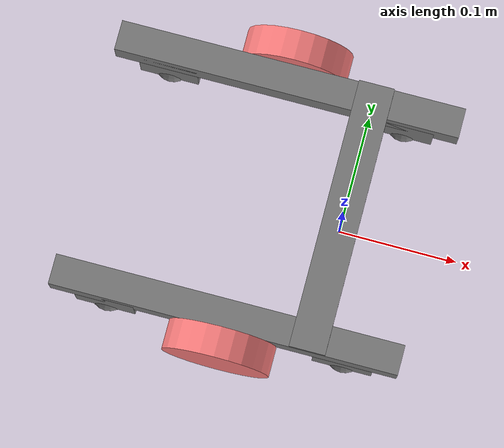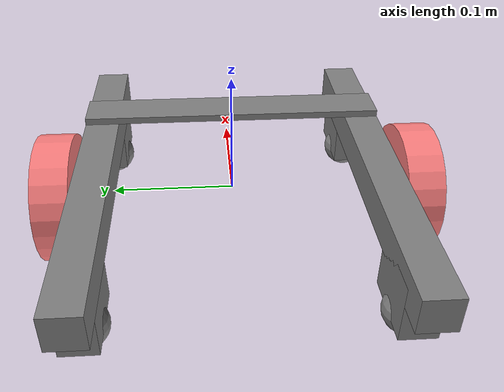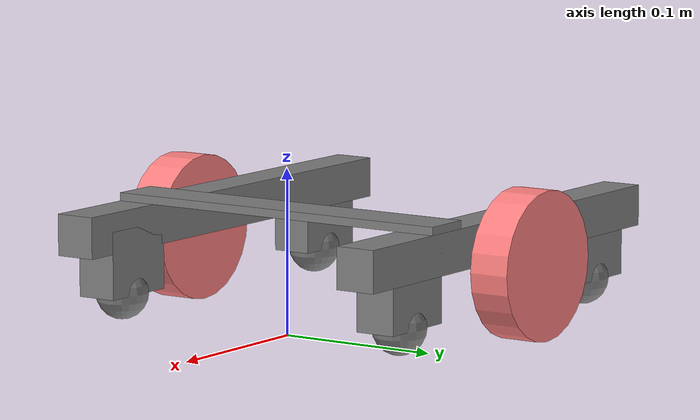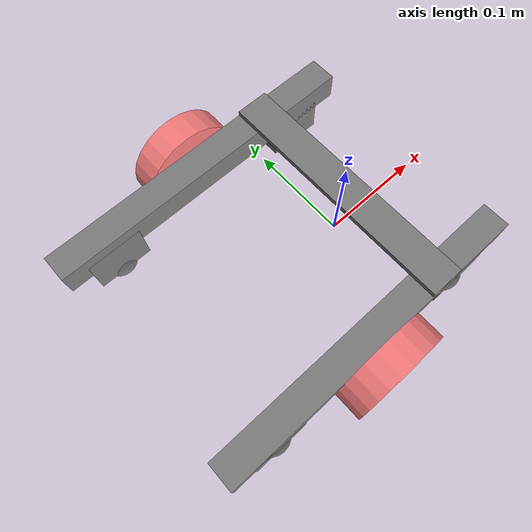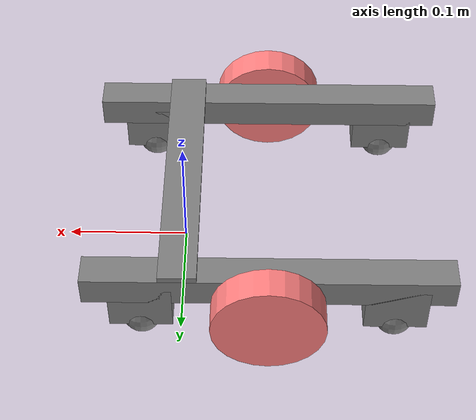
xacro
<?xml version="1.0"?>
<robot name="wakaba" xmlns:xacro="http://ros.org/wiki/xacro">

    <xacro:arg name="robot_name" default="wakaba"/>

    <material name="red">
        <color rgba="1.0 0.5 0.5 1.0"/>
    </material>
    <material name="gray">
        <color rgba="0.5 0.5 0.5 1.0"/>
    </material>

    <xacro:include filename="$(find dtw_robot)/xacro/wakaba/wheel_macro.xacro"/>
    <xacro:include filename="$(find dtw_robot)/xacro/wakaba/box_macro.xacro"/>
    <xacro:include filename="$(find dtw_robot)/xacro/wakaba/caster_macro.xacro"/>
    <xacro:include filename="$(find dtw_robot)/xacro/wakaba/mechanism_macro.xacro"/>

    <link name="base_link"/>

    <xacro:wheel_macro prefix="left_wheel"  parent="base_link" xyz="-0.07 0.125 0.045"/>
    <xacro:wheel_macro prefix="right_wheel" parent="base_link" xyz="-0.07 -0.125 0.045"/>
    <xacro:box_macro prefix="left_body"     parent="base_link" xyz="-0.07 0.1 0.06"     size_xyz="0.29 0.025 0.025" />
    <xacro:box_macro prefix="right_body"    parent="base_link" xyz="-0.07 -0.1 0.06"    size_xyz="0.29 0.025 0.025" />
    <xacro:box_macro prefix="join_body"     parent="base_link" xyz="0 0 0.075"         size_xyz="0.03 0.225 0.005" />
    <xacro:box_macro prefix="caster_front_left_body"    parent="base_link" xyz="0.03 0.1 0.0405"     size_xyz="0.05 0.025 0.041"/>
    <xacro:box_macro prefix="caster_front_right_body"   parent="base_link" xyz="0.03 -0.1 0.0405"    size_xyz="0.05 0.025 0.041"/>
    <xacro:box_macro prefix="caster_rear_left_body"     parent="base_link" xyz="-0.17 0.1 0.0405"    size_xyz="0.05 0.025 0.041"/>
    <xacro:box_macro prefix="caster_rear_right_body"    parent="base_link" xyz="-0.17 -0.1 0.0405"   size_xyz="0.05 0.025 0.041"/>
    <xacro:caster_macro prefix="front_left_caster"  parent="base_link" xyz="0.03 0.1 0.02"/>
    <xacro:caster_macro prefix="front_right_caster" parent="base_link" xyz="0.03 -0.1 0.02"/>
    <xacro:caster_macro prefix="rear_left_caster"   parent="base_link" xyz="-0.17 0.1 0.02"/>
    <xacro:caster_macro prefix="rear_right_caster"  parent="base_link" xyz="-0.17 -0.1 0.02"/>

    <gazebo>
        <plugin name="differential_drive_controller" filename="libgazebo_ros_diff_drive.so">
            <leftJoint>left_wheel_joint</leftJoint>
            <rightJoint>right_wheel_joint</rightJoint>
            <robotBaseFrame>/base_link</robotBaseFrame>
            <wheelSeparation>0.25</wheelSeparation>
            <wheelDiameter>0.1</wheelDiameter>
            <publishWheelJointState>true</publishWheelJointState>
        </plugin>
    </gazebo>
</robot>

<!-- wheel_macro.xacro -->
<robot name="dtw_robot" xmlns:xacro="http://ros.org/wiki/xacro">

    <xacro:macro name="wheel_macro" params="parent prefix xyz">
        <joint name="${prefix}_joint" type="continuous">
            <origin xyz="${xyz}" rpy="${radians(-90)} 0 0"/>
            <parent link="${parent}"/>
            <child link="${prefix}_link"/>
            <axis xyz="0 0 1"/>
            <limit velocity="12.0" effort="0.4"/>
            <dynamics damping="0.1"/>
        </joint>
        <transmission name="${prefix}_trans" type="SimpleTransmission">
            <type>transmission_interface/SimpleTransmission</type>
            <actuator name="${prefix}_motor">
                <hardwareInterface>hardware_interface/VelocityJointInterface</hardwareInterface>
                <mechanicalReduction>1</mechanicalReduction>
            </actuator>
            <joint name="${prefix}_joint">
                <hardwareInterface>hardware_interface/VelocityJointInterface</hardwareInterface>
            </joint>
        </transmission>
        <link name="${prefix}_link">
            <inertial>
                <origin xyz="0 0 0" rpy="0 0 0"/>
                <mass value="0.1"/>
                <inertia ixx="0.0001" ixy="0.0" ixz="0.0" iyy="0.0001" iyz="0.0" izz="0.0001"/>
            </inertial>
            <visual>
                <geometry>
                    <cylinder radius="0.045" length="0.025"/>
                </geometry>
                <material name="red"/>
            </visual>
            <collision>
                <geometry>
                    <cylinder radius="0.045" length="0.025"/>
                </geometry>
            </collision>
        </link>
        <gazebo reference="${prefix}_link">
            <material>Gazebo/Red</material>
            <mu1 value="2.5"/>
            <mu2 value="2.5"/>
            <kp value="50000"/>
            <kd value="10"/>
        </gazebo>
    </xacro:macro>
</robot>

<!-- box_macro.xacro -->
<robot name="dtw_robot" xmlns:xacro="http://ros.org/wiki/xacro">

    <xacro:macro name="box_macro" params="prefix parent xyz size_xyz">
        <joint name="${prefix}_joint" type="fixed">
            <parent link="${parent}"/>
            <child link="${prefix}_link"/>
            <origin xyz="${xyz}" rpy="0 0 0"/>
        </joint>
        <link name="${prefix}_link">
            <inertial>
                <origin xyz="0 0 0" rpy="0 0 0"/>
                <mass value="1.0"/>
                <inertia ixx="0.001" ixy="0.0" ixz="0.0" iyy="0.001" iyz="0.0" izz="0.001"/>
            </inertial>
            <visual>
                <origin xyz="0 0 0" rpy="0 0 0"/>
                <geometry>
                    <box size="${size_xyz}"/>
                </geometry>
                <material name="gray"/>
            </visual>
            <collision>
                <origin xyz="0 0 0" rpy="0 0 0"/>
                <geometry>
                    <box size="${size_xyz}"/>
                </geometry>
            </collision>
        </link>
        <gazebo reference="${prefix}_link">
            <material>Gazebo/Gray</material>
        </gazebo>
    </xacro:macro>
</robot>

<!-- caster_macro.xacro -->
<robot name="dtw_robot" xmlns:xacro="http://ros.org/wiki/xacro">

    <xacro:macro name="caster_macro" params="prefix parent xyz">
        <joint name="${prefix}_joint" type="fixed">
            <parent link="${parent}"/>
            <child link="${prefix}_link"/>
            <origin xyz="${xyz}" rpy="0 0 0"/>
        </joint>
        <link name="${prefix}_link">
            <visual>
                <origin xyz="0 0 0" rpy="0 0 0"/>
                <geometry>
                    <sphere radius="0.016"/>
                </geometry>
                <material name="gray"/>
            </visual>
            <collision>
                <origin xyz="0 0 0" rpy="0 0 0"/>
                <geometry>
                    <sphere radius="0.016"/>
                </geometry>
            </collision>
        </link>
        <gazebo reference="${prefix}_link">
            <material>Gazebo/Gray</material>
            <mu1 value="0.5"/>
            <mu2 value="0.5"/>
        </gazebo>
    </xacro:macro>
</robot>
